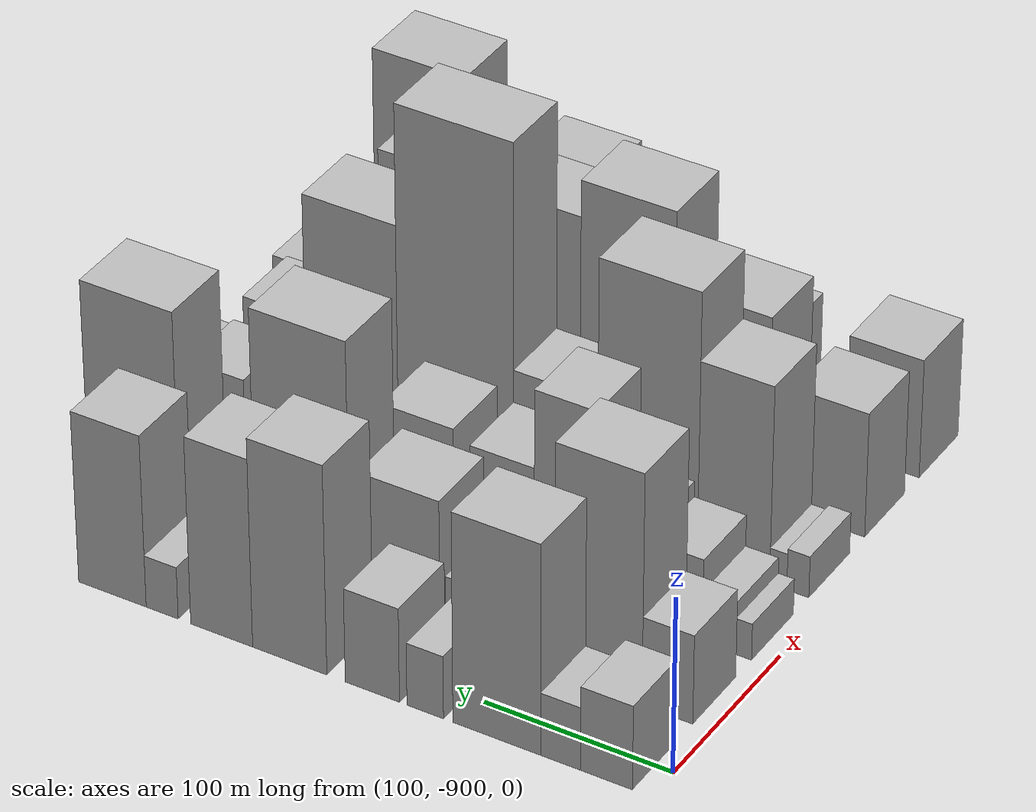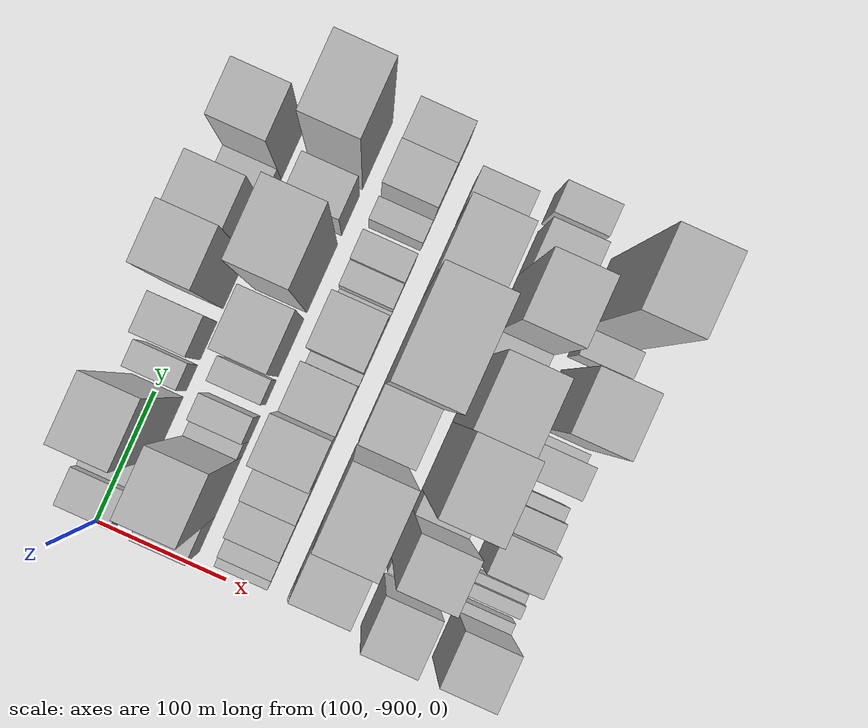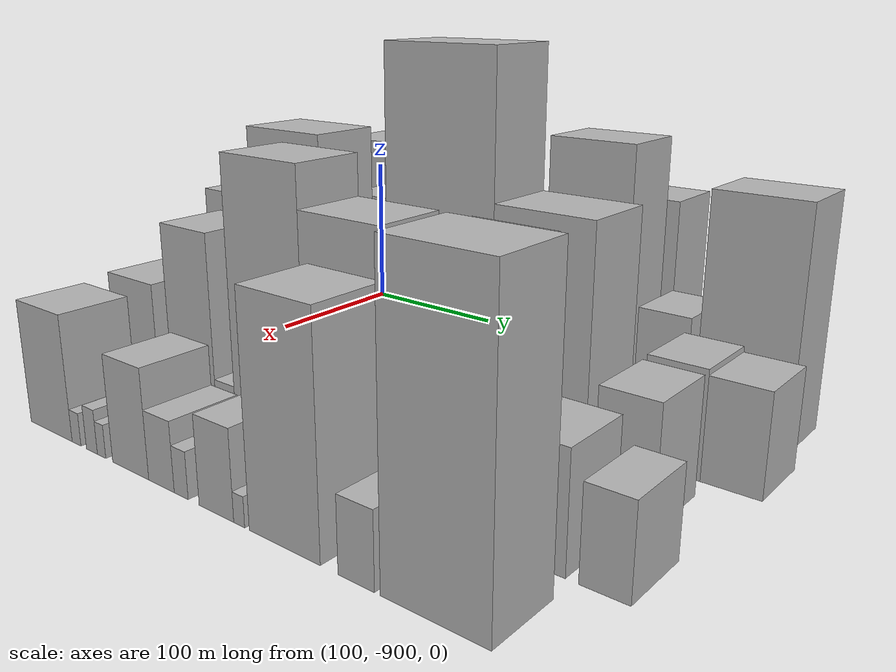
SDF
<sdf version="1.6">
 <world name="default">
  <model name="building_1">
   <static>1</static>
   <pose>100.0000 -876.3728 0 0.000000 0.000000 0.000000</pose>
   <link name="link">
    <pose>0 0 24.00 0 0 0</pose>
    <collision name="collision"><geometry><box><size>40.0000 27.2544 48.0000</size></box></geometry></collision>
    <visual name="visual">
     <cast_shadows>0</cast_shadows>
     <geometry><box><size>40.0000 27.2544 48.0000</size></box></geometry>
     <material>
      <script>
       <uri>model://HANNAS_wall/materials/scripts</uri>
       <uri>model://HANNAS_wall/materials/textures</uri>
       <name>vrc/HANNAS_wall</name>
      </script>
     </material>
    </visual>
   </link>
  </model>
  <model name="building_2">
   <static>1</static>
   <pose>100.0000 -852.3113 0 0.000000 0.000000 0.000000</pose>
   <link name="link">
    <pose>0 0 18.00 0 0 0</pose>
    <collision name="collision"><geometry><box><size>40.0000 20.8685 36.0000</size></box></geometry></collision>
    <visual name="visual">
     <cast_shadows>0</cast_shadows>
     <geometry><box><size>40.0000 20.8685 36.0000</size></box></geometry>
     <material>
      <script>
       <uri>model://HANNAS_wall/materials/scripts</uri>
       <uri>model://HANNAS_wall/materials/textures</uri>
       <name>vrc/HANNAS_wall</name>
      </script>
     </material>
    </visual>
   </link>
  </model>
  <model name="building_3">
   <static>1</static>
   <pose>100.0000 -818.5557 0 0.000000 0.000000 0.000000</pose>
   <link name="link">
    <pose>0 0 60.00 0 0 0</pose>
    <collision name="collision"><geometry><box><size>40.0000 46.6428 120.0000</size></box></geometry></collision>
    <visual name="visual">
     <cast_shadows>0</cast_shadows>
     <geometry><box><size>40.0000 46.6428 120.0000</size></box></geometry>
     <material>
      <script>
       <uri>model://HANNAS_wall/materials/scripts</uri>
       <uri>model://HANNAS_wall/materials/textures</uri>
       <name>vrc/HANNAS_wall</name>
      </script>
     </material>
    </visual>
   </link>
  </model>
  <model name="building_4">
   <static>1</static>
   <pose>100.0000 -780.4193 0 0.000000 0.000000 0.000000</pose>
   <link name="link">
    <pose>0 0 18.00 0 0 0</pose>
    <collision name="collision"><geometry><box><size>40.0000 19.6299 36.0000</size></box></geometry></collision>
    <visual name="visual">
     <cast_shadows>0</cast_shadows>
     <geometry><box><size>40.0000 19.6299 36.0000</size></box></geometry>
     <material>
      <script>
       <uri>model://HANNAS_wall/materials/scripts</uri>
       <uri>model://HANNAS_wall/materials/textures</uri>
       <name>vrc/HANNAS_wall</name>
      </script>
     </material>
    </visual>
   </link>
  </model>
  <model name="building_5">
   <static>1</static>
   <pose>100.0000 -751.9083 0 0.000000 0.000000 0.000000</pose>
   <link name="link">
    <pose>0 0 27.00 0 0 0</pose>
    <collision name="collision"><geometry><box><size>40.0000 29.3921 54.0000</size></box></geometry></collision>
    <visual name="visual">
     <cast_shadows>0</cast_shadows>
     <geometry><box><size>40.0000 29.3921 54.0000</size></box></geometry>
     <material>
      <script>
       <uri>model://HANNAS_wall/materials/scripts</uri>
       <uri>model://HANNAS_wall/materials/textures</uri>
       <name>vrc/HANNAS_wall</name>
      </script>
     </material>
    </visual>
   </link>
  </model>
  <model name="building_6">
   <static>1</static>
   <pose>100.0000 -706.8706 0 0.000000 0.000000 0.000000</pose>
   <link name="link">
    <pose>0 0 60.00 0 0 0</pose>
    <collision name="collision"><geometry><box><size>40.0000 40.6833 120.0000</size></box></geometry></collision>
    <visual name="visual">
     <cast_shadows>0</cast_shadows>
     <geometry><box><size>40.0000 40.6833 120.0000</size></box></geometry>
     <material>
      <script>
       <uri>model://HANNAS_wall/materials/scripts</uri>
       <uri>model://HANNAS_wall/materials/textures</uri>
       <name>vrc/HANNAS_wall</name>
      </script>
     </material>
    </visual>
   </link>
  </model>
  <model name="building_7">
   <static>1</static>
   <pose>100.0000 -669.3736 0 0.000000 0.000000 0.000000</pose>
   <link name="link">
    <pose>0 0 54.00 0 0 0</pose>
    <collision name="collision"><geometry><box><size>40.0000 34.3107 108.0000</size></box></geometry></collision>
    <visual name="visual">
     <cast_shadows>0</cast_shadows>
     <geometry><box><size>40.0000 34.3107 108.0000</size></box></geometry>
     <material>
      <script>
       <uri>model://HANNAS_wall/materials/scripts</uri>
       <uri>model://HANNAS_wall/materials/textures</uri>
       <name>vrc/HANNAS_wall</name>
      </script>
     </material>
    </visual>
   </link>
  </model>
  <model name="building_8">
   <static>1</static>
   <pose>100.0000 -636.2702 0 0.000000 0.000000 0.000000</pose>
   <link name="link">
    <pose>0 0 15.00 0 0 0</pose>
    <collision name="collision"><geometry><box><size>40.0000 17.8961 30.0000</size></box></geometry></collision>
    <visual name="visual">
     <cast_shadows>0</cast_shadows>
     <geometry><box><size>40.0000 17.8961 30.0000</size></box></geometry>
     <material>
      <script>
       <uri>model://HANNAS_wall/materials/scripts</uri>
       <uri>model://HANNAS_wall/materials/textures</uri>
       <name>vrc/HANNAS_wall</name>
      </script>
     </material>
    </visual>
   </link>
  </model>
  <model name="building_9">
   <static>1</static>
   <pose>100.0000 -608.3308 0 0.000000 0.000000 0.000000</pose>
   <link name="link">
    <pose>0 0 49.50 0 0 0</pose>
    <collision name="collision"><geometry><box><size>40.0000 37.9828 99.0000</size></box></geometry></collision>
    <visual name="visual">
     <cast_shadows>0</cast_shadows>
     <geometry><box><size>40.0000 37.9828 99.0000</size></box></geometry>
     <material>
      <script>
       <uri>model://HANNAS_wall/materials/scripts</uri>
       <uri>model://HANNAS_wall/materials/textures</uri>
       <name>vrc/HANNAS_wall</name>
      </script>
     </material>
    </visual>
   </link>
  </model>
  <model name="building_49">
   <static>1</static>
   <pose>155.0000 -876.6113 0 0.000000 0.000000 0.000000</pose>
   <link name="link">
    <pose>0 0 25.50 0 0 0</pose>
    <collision name="collision"><geometry><box><size>40.0000 26.7774 51.0000</size></box></geometry></collision>
    <visual name="visual">
     <cast_shadows>0</cast_shadows>
     <geometry><box><size>40.0000 26.7774 51.0000</size></box></geometry>
     <material>
      <script>
       <uri>model://HANNAS_wall/materials/scripts</uri>
       <uri>model://HANNAS_wall/materials/textures</uri>
       <name>vrc/HANNAS_wall</name>
      </script>
     </material>
    </visual>
   </link>
  </model>
  <model name="building_50">
   <static>1</static>
   <pose>155.0000 -840.0376 0 0.000000 0.000000 0.000000</pose>
   <link name="link">
    <pose>0 0 66.00 0 0 0</pose>
    <collision name="collision"><geometry><box><size>40.0000 46.3701 132.0000</size></box></geometry></collision>
    <visual name="visual">
     <cast_shadows>0</cast_shadows>
     <geometry><box><size>40.0000 46.3701 132.0000</size></box></geometry>
     <material>
      <script>
       <uri>model://HANNAS_wall/materials/scripts</uri>
       <uri>model://HANNAS_wall/materials/textures</uri>
       <name>vrc/HANNAS_wall</name>
      </script>
     </material>
    </visual>
   </link>
  </model>
  <model name="building_51">
   <static>1</static>
   <pose>155.0000 -810.8383 0 0.000000 0.000000 0.000000</pose>
   <link name="link">
    <pose>0 0 13.50 0 0 0</pose>
    <collision name="collision"><geometry><box><size>40.0000 12.0285 27.0000</size></box></geometry></collision>
    <visual name="visual">
     <cast_shadows>0</cast_shadows>
     <geometry><box><size>40.0000 12.0285 27.0000</size></box></geometry>
     <material>
      <script>
       <uri>model://HANNAS_wall/materials/scripts</uri>
       <uri>model://HANNAS_wall/materials/textures</uri>
       <name>vrc/HANNAS_wall</name>
      </script>
     </material>
    </visual>
   </link>
  </model>
  <model name="building_52">
   <static>1</static>
   <pose>155.0000 -795.0150 0 0.000000 0.000000 0.000000</pose>
   <link name="link">
    <pose>0 0 19.50 0 0 0</pose>
    <collision name="collision"><geometry><box><size>40.0000 19.6181 39.0000</size></box></geometry></collision>
    <visual name="visual">
     <cast_shadows>0</cast_shadows>
     <geometry><box><size>40.0000 19.6181 39.0000</size></box></geometry>
     <material>
      <script>
       <uri>model://HANNAS_wall/materials/scripts</uri>
       <uri>model://HANNAS_wall/materials/textures</uri>
       <name>vrc/HANNAS_wall</name>
      </script>
     </material>
    </visual>
   </link>
  </model>
  <model name="building_53">
   <static>1</static>
   <pose>155.0000 -766.9659 0 0.000000 0.000000 0.000000</pose>
   <link name="link">
    <pose>0 0 16.50 0 0 0</pose>
    <collision name="collision"><geometry><box><size>40.0000 18.4801 33.0000</size></box></geometry></collision>
    <visual name="visual">
     <cast_shadows>0</cast_shadows>
     <geometry><box><size>40.0000 18.4801 33.0000</size></box></geometry>
     <material>
      <script>
       <uri>model://HANNAS_wall/materials/scripts</uri>
       <uri>model://HANNAS_wall/materials/textures</uri>
       <name>vrc/HANNAS_wall</name>
      </script>
     </material>
    </visual>
   </link>
  </model>
  <model name="building_54">
   <static>1</static>
   <pose>155.0000 -732.5812 0 0.000000 0.000000 0.000000</pose>
   <link name="link">
    <pose>0 0 37.50 0 0 0</pose>
    <collision name="collision"><geometry><box><size>40.0000 44.2895 75.0000</size></box></geometry></collision>
    <visual name="visual">
     <cast_shadows>0</cast_shadows>
     <geometry><box><size>40.0000 44.2895 75.0000</size></box></geometry>
     <material>
      <script>
       <uri>model://HANNAS_wall/materials/scripts</uri>
       <uri>model://HANNAS_wall/materials/textures</uri>
       <name>vrc/HANNAS_wall</name>
      </script>
     </material>
    </visual>
   </link>
  </model>
  <model name="building_55">
   <static>1</static>
   <pose>155.0000 -679.1869 0 0.000000 0.000000 0.000000</pose>
   <link name="link">
    <pose>0 0 73.50 0 0 0</pose>
    <collision name="collision"><geometry><box><size>40.0000 52.4989 147.0000</size></box></geometry></collision>
    <visual name="visual">
     <cast_shadows>0</cast_shadows>
     <geometry><box><size>40.0000 52.4989 147.0000</size></box></geometry>
     <material>
      <script>
       <uri>model://HANNAS_wall/materials/scripts</uri>
       <uri>model://HANNAS_wall/materials/textures</uri>
       <name>vrc/HANNAS_wall</name>
      </script>
     </material>
    </visual>
   </link>
  </model>
  <model name="building_56">
   <static>1</static>
   <pose>155.0000 -630.6024 0 0.000000 0.000000 0.000000</pose>
   <link name="link">
    <pose>0 0 30.00 0 0 0</pose>
    <collision name="collision"><geometry><box><size>40.0000 30.6701 60.0000</size></box></geometry></collision>
    <visual name="visual">
     <cast_shadows>0</cast_shadows>
     <geometry><box><size>40.0000 30.6701 60.0000</size></box></geometry>
     <material>
      <script>
       <uri>model://HANNAS_wall/materials/scripts</uri>
       <uri>model://HANNAS_wall/materials/textures</uri>
       <name>vrc/HANNAS_wall</name>
      </script>
     </material>
    </visual>
   </link>
  </model>
  <model name="building_57">
   <static>1</static>
   <pose>155.0000 -584.4768 0 0.000000 0.000000 0.000000</pose>
   <link name="link">
    <pose>0 0 64.50 0 0 0</pose>
    <collision name="collision"><geometry><box><size>40.0000 51.5812 129.0000</size></box></geometry></collision>
    <visual name="visual">
     <cast_shadows>0</cast_shadows>
     <geometry><box><size>40.0000 51.5812 129.0000</size></box></geometry>
     <material>
      <script>
       <uri>model://HANNAS_wall/materials/scripts</uri>
       <uri>model://HANNAS_wall/materials/textures</uri>
       <name>vrc/HANNAS_wall</name>
      </script>
     </material>
    </visual>
   </link>
  </model>
  <model name="building_98">
   <static>1</static>
   <pose>210.0000 -885.7321 0 0.000000 0.000000 0.000000</pose>
   <link name="link">
    <pose>0 0 10.50 0 0 0</pose>
    <collision name="collision"><geometry><box><size>40.0000 8.5358 21.0000</size></box></geometry></collision>
    <visual name="visual">
     <cast_shadows>0</cast_shadows>
     <geometry><box><size>40.0000 8.5358 21.0000</size></box></geometry>
     <material>
      <script>
       <uri>model://HANNAS_wall/materials/scripts</uri>
       <uri>model://HANNAS_wall/materials/textures</uri>
       <name>vrc/HANNAS_wall</name>
      </script>
     </material>
    </visual>
   </link>
  </model>
  <model name="building_99">
   <static>1</static>
   <pose>210.0000 -872.6672 0 0.000000 0.000000 0.000000</pose>
   <link name="link">
    <pose>0 0 15.00 0 0 0</pose>
    <collision name="collision"><geometry><box><size>40.0000 17.5940 30.0000</size></box></geometry></collision>
    <visual name="visual">
     <cast_shadows>0</cast_shadows>
     <geometry><box><size>40.0000 17.5940 30.0000</size></box></geometry>
     <material>
      <script>
       <uri>model://HANNAS_wall/materials/scripts</uri>
       <uri>model://HANNAS_wall/materials/textures</uri>
       <name>vrc/HANNAS_wall</name>
      </script>
     </material>
    </visual>
   </link>
  </model>
  <model name="building_100">
   <static>1</static>
   <pose>210.0000 -850.0177 0 0.000000 0.000000 0.000000</pose>
   <link name="link">
    <pose>0 0 24.00 0 0 0</pose>
    <collision name="collision"><geometry><box><size>40.0000 27.7050 48.0000</size></box></geometry></collision>
    <visual name="visual">
     <cast_shadows>0</cast_shadows>
     <geometry><box><size>40.0000 27.7050 48.0000</size></box></geometry>
     <material>
      <script>
       <uri>model://HANNAS_wall/materials/scripts</uri>
       <uri>model://HANNAS_wall/materials/textures</uri>
       <name>vrc/HANNAS_wall</name>
      </script>
     </material>
    </visual>
   </link>
  </model>
  <model name="building_101">
   <static>1</static>
   <pose>210.0000 -821.4120 0 0.000000 0.000000 0.000000</pose>
   <link name="link">
    <pose>0 0 28.50 0 0 0</pose>
    <collision name="collision"><geometry><box><size>40.0000 29.5065 57.0000</size></box></geometry></collision>
    <visual name="visual">
     <cast_shadows>0</cast_shadows>
     <geometry><box><size>40.0000 29.5065 57.0000</size></box></geometry>
     <material>
      <script>
       <uri>model://HANNAS_wall/materials/scripts</uri>
       <uri>model://HANNAS_wall/materials/textures</uri>
       <name>vrc/HANNAS_wall</name>
      </script>
     </material>
    </visual>
   </link>
  </model>
  <model name="building_102">
   <static>1</static>
   <pose>210.0000 -789.8517 0 0.000000 0.000000 0.000000</pose>
   <link name="link">
    <pose>0 0 55.50 0 0 0</pose>
    <collision name="collision"><geometry><box><size>40.0000 33.6141 111.0000</size></box></geometry></collision>
    <visual name="visual">
     <cast_shadows>0</cast_shadows>
     <geometry><box><size>40.0000 33.6141 111.0000</size></box></geometry>
     <material>
      <script>
       <uri>model://HANNAS_wall/materials/scripts</uri>
       <uri>model://HANNAS_wall/materials/textures</uri>
       <name>vrc/HANNAS_wall</name>
      </script>
     </material>
    </visual>
   </link>
  </model>
  <model name="building_103">
   <static>1</static>
   <pose>210.0000 -755.4832 0 0.000000 0.000000 0.000000</pose>
   <link name="link">
    <pose>0 0 33.00 0 0 0</pose>
    <collision name="collision"><geometry><box><size>40.0000 35.1228 66.0000</size></box></geometry></collision>
    <visual name="visual">
     <cast_shadows>0</cast_shadows>
     <geometry><box><size>40.0000 35.1228 66.0000</size></box></geometry>
     <material>
      <script>
       <uri>model://HANNAS_wall/materials/scripts</uri>
       <uri>model://HANNAS_wall/materials/textures</uri>
       <name>vrc/HANNAS_wall</name>
      </script>
     </material>
    </visual>
   </link>
  </model>
  <model name="building_104">
   <static>1</static>
   <pose>210.0000 -733.4380 0 0.000000 0.000000 0.000000</pose>
   <link name="link">
    <pose>0 0 10.50 0 0 0</pose>
    <collision name="collision"><geometry><box><size>40.0000 8.9677 21.0000</size></box></geometry></collision>
    <visual name="visual">
     <cast_shadows>0</cast_shadows>
     <geometry><box><size>40.0000 8.9677 21.0000</size></box></geometry>
     <material>
      <script>
       <uri>model://HANNAS_wall/materials/scripts</uri>
       <uri>model://HANNAS_wall/materials/textures</uri>
       <name>vrc/HANNAS_wall</name>
      </script>
     </material>
    </visual>
   </link>
  </model>
  <model name="building_105">
   <static>1</static>
   <pose>210.0000 -709.0007 0 0.000000 0.000000 0.000000</pose>
   <link name="link">
    <pose>0 0 36.00 0 0 0</pose>
    <collision name="collision"><geometry><box><size>40.0000 39.9068 72.0000</size></box></geometry></collision>
    <visual name="visual">
     <cast_shadows>0</cast_shadows>
     <geometry><box><size>40.0000 39.9068 72.0000</size></box></geometry>
     <material>
      <script>
       <uri>model://HANNAS_wall/materials/scripts</uri>
       <uri>model://HANNAS_wall/materials/textures</uri>
       <name>vrc/HANNAS_wall</name>
      </script>
     </material>
    </visual>
   </link>
  </model>
  <model name="building_106">
   <static>1</static>
   <pose>210.0000 -685.3286 0 0.000000 0.000000 0.000000</pose>
   <link name="link">
    <pose>0 0 7.50 0 0 0</pose>
    <collision name="collision"><geometry><box><size>40.0000 7.4375 15.0000</size></box></geometry></collision>
    <visual name="visual">
     <cast_shadows>0</cast_shadows>
     <geometry><box><size>40.0000 7.4375 15.0000</size></box></geometry>
     <material>
      <script>
       <uri>model://HANNAS_wall/materials/scripts</uri>
       <uri>model://HANNAS_wall/materials/textures</uri>
       <name>vrc/HANNAS_wall</name>
      </script>
     </material>
    </visual>
   </link>
  </model>
  <model name="building_107">
   <static>1</static>
   <pose>210.0000 -672.3068 0 0.000000 0.000000 0.000000</pose>
   <link name="link">
    <pose>0 0 18.00 0 0 0</pose>
    <collision name="collision"><geometry><box><size>40.0000 18.6061 36.0000</size></box></geometry></collision>
    <visual name="visual">
     <cast_shadows>0</cast_shadows>
     <geometry><box><size>40.0000 18.6061 36.0000</size></box></geometry>
     <material>
      <script>
       <uri>model://HANNAS_wall/materials/scripts</uri>
       <uri>model://HANNAS_wall/materials/textures</uri>
       <name>vrc/HANNAS_wall</name>
      </script>
     </material>
    </visual>
   </link>
  </model>
  <model name="building_108">
   <static>1</static>
   <pose>210.0000 -652.4063 0 0.000000 0.000000 0.000000</pose>
   <link name="link">
    <pose>0 0 21.00 0 0 0</pose>
    <collision name="collision"><geometry><box><size>40.0000 21.1949 42.0000</size></box></geometry></collision>
    <visual name="visual">
     <cast_shadows>0</cast_shadows>
     <geometry><box><size>40.0000 21.1949 42.0000</size></box></geometry>
     <material>
      <script>
       <uri>model://HANNAS_wall/materials/scripts</uri>
       <uri>model://HANNAS_wall/materials/textures</uri>
       <name>vrc/HANNAS_wall</name>
      </script>
     </material>
    </visual>
   </link>
  </model>
  <model name="building_109">
   <static>1</static>
   <pose>210.0000 -624.3836 0 0.000000 0.000000 0.000000</pose>
   <link name="link">
    <pose>0 0 16.50 0 0 0</pose>
    <collision name="collision"><geometry><box><size>40.0000 16.8505 33.0000</size></box></geometry></collision>
    <visual name="visual">
     <cast_shadows>0</cast_shadows>
     <geometry><box><size>40.0000 16.8505 33.0000</size></box></geometry>
     <material>
      <script>
       <uri>model://HANNAS_wall/materials/scripts</uri>
       <uri>model://HANNAS_wall/materials/textures</uri>
       <name>vrc/HANNAS_wall</name>
      </script>
     </material>
    </visual>
   </link>
  </model>
  <model name="building_110">
   <static>1</static>
   <pose>210.0000 -596.2396 0 0.000000 0.000000 0.000000</pose>
   <link name="link">
    <pose>0 0 28.50 0 0 0</pose>
    <collision name="collision"><geometry><box><size>40.0000 31.4375 57.0000</size></box></geometry></collision>
    <visual name="visual">
     <cast_shadows>0</cast_shadows>
     <geometry><box><size>40.0000 31.4375 57.0000</size></box></geometry>
     <material>
      <script>
       <uri>model://HANNAS_wall/materials/scripts</uri>
       <uri>model://HANNAS_wall/materials/textures</uri>
       <name>vrc/HANNAS_wall</name>
      </script>
     </material>
    </visual>
   </link>
  </model>
  <model name="building_111">
   <static>1</static>
   <pose>210.0000 -565.2725 0 0.000000 0.000000 0.000000</pose>
   <link name="link">
    <pose>0 0 27.00 0 0 0</pose>
    <collision name="collision"><geometry><box><size>40.0000 30.4966 54.0000</size></box></geometry></collision>
    <visual name="visual">
     <cast_shadows>0</cast_shadows>
     <geometry><box><size>40.0000 30.4966 54.0000</size></box></geometry>
     <material>
      <script>
       <uri>model://HANNAS_wall/materials/scripts</uri>
       <uri>model://HANNAS_wall/materials/textures</uri>
       <name>vrc/HANNAS_wall</name>
      </script>
     </material>
    </visual>
   </link>
  </model>
  <model name="building_154">
   <static>1</static>
   <pose>265.0000 -884.1176 0 0.000000 0.000000 0.000000</pose>
   <link name="link">
    <pose>0 0 12.00 0 0 0</pose>
    <collision name="collision"><geometry><box><size>40.0000 11.7647 24.0000</size></box></geometry></collision>
    <visual name="visual">
     <cast_shadows>0</cast_shadows>
     <geometry><box><size>40.0000 11.7647 24.0000</size></box></geometry>
     <material>
      <script>
       <uri>model://HANNAS_wall/materials/scripts</uri>
       <uri>model://HANNAS_wall/materials/textures</uri>
       <name>vrc/HANNAS_wall</name>
      </script>
     </material>
    </visual>
   </link>
  </model>
  <model name="building_155">
   <static>1</static>
   <pose>265.0000 -873.5935 0 0.000000 0.000000 0.000000</pose>
   <link name="link">
    <pose>0 0 10.50 0 0 0</pose>
    <collision name="collision"><geometry><box><size>40.0000 9.2837 21.0000</size></box></geometry></collision>
    <visual name="visual">
     <cast_shadows>0</cast_shadows>
     <geometry><box><size>40.0000 9.2837 21.0000</size></box></geometry>
     <material>
      <script>
       <uri>model://HANNAS_wall/materials/scripts</uri>
       <uri>model://HANNAS_wall/materials/textures</uri>
       <name>vrc/HANNAS_wall</name>
      </script>
     </material>
    </visual>
   </link>
  </model>
  <model name="building_156">
   <static>1</static>
   <pose>265.0000 -849.3984 0 0.000000 0.000000 0.000000</pose>
   <link name="link">
    <pose>0 0 57.00 0 0 0</pose>
    <collision name="collision"><geometry><box><size>40.0000 39.1064 114.0000</size></box></geometry></collision>
    <visual name="visual">
     <cast_shadows>0</cast_shadows>
     <geometry><box><size>40.0000 39.1064 114.0000</size></box></geometry>
     <material>
      <script>
       <uri>model://HANNAS_wall/materials/scripts</uri>
       <uri>model://HANNAS_wall/materials/textures</uri>
       <name>vrc/HANNAS_wall</name>
      </script>
     </material>
    </visual>
   </link>
  </model>
  <model name="building_157">
   <static>1</static>
   <pose>265.0000 -802.4860 0 0.000000 0.000000 0.000000</pose>
   <link name="link">
    <pose>0 0 76.50 0 0 0</pose>
    <collision name="collision"><geometry><box><size>40.0000 54.7183 153.0000</size></box></geometry></collision>
    <visual name="visual">
     <cast_shadows>0</cast_shadows>
     <geometry><box><size>40.0000 54.7183 153.0000</size></box></geometry>
     <material>
      <script>
       <uri>model://HANNAS_wall/materials/scripts</uri>
       <uri>model://HANNAS_wall/materials/textures</uri>
       <name>vrc/HANNAS_wall</name>
      </script>
     </material>
    </visual>
   </link>
  </model>
  <model name="building_158">
   <static>1</static>
   <pose>265.0000 -750.0093 0 0.000000 0.000000 0.000000</pose>
   <link name="link">
    <pose>0 0 36.00 0 0 0</pose>
    <collision name="collision"><geometry><box><size>40.0000 42.2350 72.0000</size></box></geometry></collision>
    <visual name="visual">
     <cast_shadows>0</cast_shadows>
     <geometry><box><size>40.0000 42.2350 72.0000</size></box></geometry>
     <material>
      <script>
       <uri>model://HANNAS_wall/materials/scripts</uri>
       <uri>model://HANNAS_wall/materials/textures</uri>
       <name>vrc/HANNAS_wall</name>
      </script>
     </material>
    </visual>
   </link>
  </model>
  <model name="building_159">
   <static>1</static>
   <pose>265.0000 -696.4402 0 0.000000 0.000000 0.000000</pose>
   <link name="link">
    <pose>0 0 100.50 0 0 0</pose>
    <collision name="collision"><geometry><box><size>40.0000 64.9032 201.0000</size></box></geometry></collision>
    <visual name="visual">
     <cast_shadows>0</cast_shadows>
     <geometry><box><size>40.0000 64.9032 201.0000</size></box></geometry>
     <material>
      <script>
       <uri>model://HANNAS_wall/materials/scripts</uri>
       <uri>model://HANNAS_wall/materials/textures</uri>
       <name>vrc/HANNAS_wall</name>
      </script>
     </material>
    </visual>
   </link>
  </model>
  <model name="building_160">
   <static>1</static>
   <pose>265.0000 -637.8493 0 0.000000 0.000000 0.000000</pose>
   <link name="link">
    <pose>0 0 66.00 0 0 0</pose>
    <collision name="collision"><geometry><box><size>40.0000 52.2787 132.0000</size></box></geometry></collision>
    <visual name="visual">
     <cast_shadows>0</cast_shadows>
     <geometry><box><size>40.0000 52.2787 132.0000</size></box></geometry>
     <material>
      <script>
       <uri>model://HANNAS_wall/materials/scripts</uri>
       <uri>model://HANNAS_wall/materials/textures</uri>
       <name>vrc/HANNAS_wall</name>
      </script>
     </material>
    </visual>
   </link>
  </model>
  <model name="building_161">
   <static>1</static>
   <pose>265.0000 -591.4297 0 0.000000 0.000000 0.000000</pose>
   <link name="link">
    <pose>0 0 30.00 0 0 0</pose>
    <collision name="collision"><geometry><box><size>40.0000 30.5606 60.0000</size></box></geometry></collision>
    <visual name="visual">
     <cast_shadows>0</cast_shadows>
     <geometry><box><size>40.0000 30.5606 60.0000</size></box></geometry>
     <material>
      <script>
       <uri>model://HANNAS_wall/materials/scripts</uri>
       <uri>model://HANNAS_wall/materials/textures</uri>
       <name>vrc/HANNAS_wall</name>
      </script>
     </material>
    </visual>
   </link>
  </model>
  <model name="building_209">
   <static>1</static>
   <pose>320.0000 -869.9074 0 0.000000 0.000000 0.000000</pose>
   <link name="link">
    <pose>0 0 36.00 0 0 0</pose>
    <collision name="collision"><geometry><box><size>40.0000 40.1853 72.0000</size></box></geometry></collision>
    <visual name="visual">
     <cast_shadows>0</cast_shadows>
     <geometry><box><size>40.0000 40.1853 72.0000</size></box></geometry>
     <material>
      <script>
       <uri>model://HANNAS_wall/materials/scripts</uri>
       <uri>model://HANNAS_wall/materials/textures</uri>
       <name>vrc/HANNAS_wall</name>
      </script>
     </material>
    </visual>
   </link>
  </model>
  <model name="building_210">
   <static>1</static>
   <pose>320.0000 -841.5827 0 0.000000 0.000000 0.000000</pose>
   <link name="link">
    <pose>0 0 9.00 0 0 0</pose>
    <collision name="collision"><geometry><box><size>40.0000 8.4641 18.0000</size></box></geometry></collision>
    <visual name="visual">
     <cast_shadows>0</cast_shadows>
     <geometry><box><size>40.0000 8.4641 18.0000</size></box></geometry>
     <material>
      <script>
       <uri>model://HANNAS_wall/materials/scripts</uri>
       <uri>model://HANNAS_wall/materials/textures</uri>
       <name>vrc/HANNAS_wall</name>
      </script>
     </material>
    </visual>
   </link>
  </model>
  <model name="building_211">
   <static>1</static>
   <pose>320.0000 -819.0406 0 0.000000 0.000000 0.000000</pose>
   <link name="link">
    <pose>0 0 54.00 0 0 0</pose>
    <collision name="collision"><geometry><box><size>40.0000 36.6201 108.0000</size></box></geometry></collision>
    <visual name="visual">
     <cast_shadows>0</cast_shadows>
     <geometry><box><size>40.0000 36.6201 108.0000</size></box></geometry>
     <material>
      <script>
       <uri>model://HANNAS_wall/materials/scripts</uri>
       <uri>model://HANNAS_wall/materials/textures</uri>
       <name>vrc/HANNAS_wall</name>
      </script>
     </material>
    </visual>
   </link>
  </model>
  <model name="building_212">
   <static>1</static>
   <pose>320.0000 -793.0028 0 0.000000 0.000000 0.000000</pose>
   <link name="link">
    <pose>0 0 15.00 0 0 0</pose>
    <collision name="collision"><geometry><box><size>40.0000 15.4555 30.0000</size></box></geometry></collision>
    <visual name="visual">
     <cast_shadows>0</cast_shadows>
     <geometry><box><size>40.0000 15.4555 30.0000</size></box></geometry>
     <material>
      <script>
       <uri>model://HANNAS_wall/materials/scripts</uri>
       <uri>model://HANNAS_wall/materials/textures</uri>
       <name>vrc/HANNAS_wall</name>
      </script>
     </material>
    </visual>
   </link>
  </model>
  <model name="building_213">
   <static>1</static>
   <pose>320.0000 -759.2458 0 0.000000 0.000000 0.000000</pose>
   <link name="link">
    <pose>0 0 75.00 0 0 0</pose>
    <collision name="collision"><geometry><box><size>40.0000 52.0584 150.0000</size></box></geometry></collision>
    <visual name="visual">
     <cast_shadows>0</cast_shadows>
     <geometry><box><size>40.0000 52.0584 150.0000</size></box></geometry>
     <material>
      <script>
       <uri>model://HANNAS_wall/materials/scripts</uri>
       <uri>model://HANNAS_wall/materials/textures</uri>
       <name>vrc/HANNAS_wall</name>
      </script>
     </material>
    </visual>
   </link>
  </model>
  <model name="building_214">
   <static>1</static>
   <pose>320.0000 -708.3393 0 0.000000 0.000000 0.000000</pose>
   <link name="link">
    <pose>0 0 64.50 0 0 0</pose>
    <collision name="collision"><geometry><box><size>40.0000 49.7547 129.0000</size></box></geometry></collision>
    <visual name="visual">
     <cast_shadows>0</cast_shadows>
     <geometry><box><size>40.0000 49.7547 129.0000</size></box></geometry>
     <material>
      <script>
       <uri>model://HANNAS_wall/materials/scripts</uri>
       <uri>model://HANNAS_wall/materials/textures</uri>
       <name>vrc/HANNAS_wall</name>
      </script>
     </material>
    </visual>
   </link>
  </model>
  <model name="building_215">
   <static>1</static>
   <pose>320.0000 -674.2924 0 0.000000 0.000000 0.000000</pose>
   <link name="link">
    <pose>0 0 18.00 0 0 0</pose>
    <collision name="collision"><geometry><box><size>40.0000 18.3391 36.0000</size></box></geometry></collision>
    <visual name="visual">
     <cast_shadows>0</cast_shadows>
     <geometry><box><size>40.0000 18.3391 36.0000</size></box></geometry>
     <material>
      <script>
       <uri>model://HANNAS_wall/materials/scripts</uri>
       <uri>model://HANNAS_wall/materials/textures</uri>
       <name>vrc/HANNAS_wall</name>
      </script>
     </material>
    </visual>
   </link>
  </model>
  <model name="building_216">
   <static>1</static>
   <pose>320.0000 -642.4838 0 0.000000 0.000000 0.000000</pose>
   <link name="link">
    <pose>0 0 64.50 0 0 0</pose>
    <collision name="collision"><geometry><box><size>40.0000 45.2781 129.0000</size></box></geometry></collision>
    <visual name="visual">
     <cast_shadows>0</cast_shadows>
     <geometry><box><size>40.0000 45.2781 129.0000</size></box></geometry>
     <material>
      <script>
       <uri>model://HANNAS_wall/materials/scripts</uri>
       <uri>model://HANNAS_wall/materials/textures</uri>
       <name>vrc/HANNAS_wall</name>
      </script>
     </material>
    </visual>
   </link>
  </model>
  <model name="building_217">
   <static>1</static>
   <pose>320.0000 -603.2186 0 0.000000 0.000000 0.000000</pose>
   <link name="link">
    <pose>0 0 28.50 0 0 0</pose>
    <collision name="collision"><geometry><box><size>40.0000 33.2523 57.0000</size></box></geometry></collision>
    <visual name="visual">
     <cast_shadows>0</cast_shadows>
     <geometry><box><size>40.0000 33.2523 57.0000</size></box></geometry>
     <material>
      <script>
       <uri>model://HANNAS_wall/materials/scripts</uri>
       <uri>model://HANNAS_wall/materials/textures</uri>
       <name>vrc/HANNAS_wall</name>
      </script>
     </material>
    </visual>
   </link>
  </model>
  <model name="building_218">
   <static>1</static>
   <pose>320.0000 -569.0226 0 0.000000 0.000000 0.000000</pose>
   <link name="link">
    <pose>0 0 22.50 0 0 0</pose>
    <collision name="collision"><geometry><box><size>40.0000 23.1397 45.0000</size></box></geometry></collision>
    <visual name="visual">
     <cast_shadows>0</cast_shadows>
     <geometry><box><size>40.0000 23.1397 45.0000</size></box></geometry>
     <material>
      <script>
       <uri>model://HANNAS_wall/materials/scripts</uri>
       <uri>model://HANNAS_wall/materials/textures</uri>
       <name>vrc/HANNAS_wall</name>
      </script>
     </material>
    </visual>
   </link>
  </model>
  <model name="building_259">
   <static>1</static>
   <pose>375.0000 -870.0220 0 0.000000 0.000000 0.000000</pose>
   <link name="link">
    <pose>0 0 34.50 0 0 0</pose>
    <collision name="collision"><geometry><box><size>40.0000 39.9561 69.0000</size></box></geometry></collision>
    <visual name="visual">
     <cast_shadows>0</cast_shadows>
     <geometry><box><size>40.0000 39.9561 69.0000</size></box></geometry>
     <material>
      <script>
       <uri>model://HANNAS_wall/materials/scripts</uri>
       <uri>model://HANNAS_wall/materials/textures</uri>
       <name>vrc/HANNAS_wall</name>
      </script>
     </material>
    </visual>
   </link>
  </model>
  <model name="building_260">
   <static>1</static>
   <pose>375.0000 -845.9788 0 0.000000 0.000000 0.000000</pose>
   <link name="link">
    <pose>0 0 9.00 0 0 0</pose>
    <collision name="collision"><geometry><box><size>40.0000 8.1302 18.0000</size></box></geometry></collision>
    <visual name="visual">
     <cast_shadows>0</cast_shadows>
     <geometry><box><size>40.0000 8.1302 18.0000</size></box></geometry>
     <material>
      <script>
       <uri>model://HANNAS_wall/materials/scripts</uri>
       <uri>model://HANNAS_wall/materials/textures</uri>
       <name>vrc/HANNAS_wall</name>
      </script>
     </material>
    </visual>
   </link>
  </model>
  <model name="building_261">
   <static>1</static>
   <pose>375.0000 -832.0209 0 0.000000 0.000000 0.000000</pose>
   <link name="link">
    <pose>0 0 12.00 0 0 0</pose>
    <collision name="collision"><geometry><box><size>40.0000 9.7856 24.0000</size></box></geometry></collision>
    <visual name="visual">
     <cast_shadows>0</cast_shadows>
     <geometry><box><size>40.0000 9.7856 24.0000</size></box></geometry>
     <material>
      <script>
       <uri>model://HANNAS_wall/materials/scripts</uri>
       <uri>model://HANNAS_wall/materials/textures</uri>
       <name>vrc/HANNAS_wall</name>
      </script>
     </material>
    </visual>
   </link>
  </model>
  <model name="building_262">
   <static>1</static>
   <pose>375.0000 -823.4637 0 0.000000 0.000000 0.000000</pose>
   <link name="link">
    <pose>0 0 9.00 0 0 0</pose>
    <collision name="collision"><geometry><box><size>40.0000 7.3287 18.0000</size></box></geometry></collision>
    <visual name="visual">
     <cast_shadows>0</cast_shadows>
     <geometry><box><size>40.0000 7.3287 18.0000</size></box></geometry>
     <material>
      <script>
       <uri>model://HANNAS_wall/materials/scripts</uri>
       <uri>model://HANNAS_wall/materials/textures</uri>
       <name>vrc/HANNAS_wall</name>
      </script>
     </material>
    </visual>
   </link>
  </model>
  <model name="building_263">
   <static>1</static>
   <pose>375.0000 -798.9651 0 0.000000 0.000000 0.000000</pose>
   <link name="link">
    <pose>0 0 28.50 0 0 0</pose>
    <collision name="collision"><geometry><box><size>40.0000 29.6686 57.0000</size></box></geometry></collision>
    <visual name="visual">
     <cast_shadows>0</cast_shadows>
     <geometry><box><size>40.0000 29.6686 57.0000</size></box></geometry>
     <material>
      <script>
       <uri>model://HANNAS_wall/materials/scripts</uri>
       <uri>model://HANNAS_wall/materials/textures</uri>
       <name>vrc/HANNAS_wall</name>
      </script>
     </material>
    </visual>
   </link>
  </model>
  <model name="building_264">
   <static>1</static>
   <pose>375.0000 -774.2661 0 0.000000 0.000000 0.000000</pose>
   <link name="link">
    <pose>0 0 18.00 0 0 0</pose>
    <collision name="collision"><geometry><box><size>40.0000 19.7293 36.0000</size></box></geometry></collision>
    <visual name="visual">
     <cast_shadows>0</cast_shadows>
     <geometry><box><size>40.0000 19.7293 36.0000</size></box></geometry>
     <material>
      <script>
       <uri>model://HANNAS_wall/materials/scripts</uri>
       <uri>model://HANNAS_wall/materials/textures</uri>
       <name>vrc/HANNAS_wall</name>
      </script>
     </material>
    </visual>
   </link>
  </model>
  <model name="building_265">
   <static>1</static>
   <pose>375.0000 -759.2546 0 0.000000 0.000000 0.000000</pose>
   <link name="link">
    <pose>0 0 12.00 0 0 0</pose>
    <collision name="collision"><geometry><box><size>40.0000 10.2937 24.0000</size></box></geometry></collision>
    <visual name="visual">
     <cast_shadows>0</cast_shadows>
     <geometry><box><size>40.0000 10.2937 24.0000</size></box></geometry>
     <material>
      <script>
       <uri>model://HANNAS_wall/materials/scripts</uri>
       <uri>model://HANNAS_wall/materials/textures</uri>
       <name>vrc/HANNAS_wall</name>
      </script>
     </material>
    </visual>
   </link>
  </model>
  <model name="building_266">
   <static>1</static>
   <pose>375.0000 -734.1075 0 0.000000 0.000000 0.000000</pose>
   <link name="link">
    <pose>0 0 22.50 0 0 0</pose>
    <collision name="collision"><geometry><box><size>40.0000 24.0005 45.0000</size></box></geometry></collision>
    <visual name="visual">
     <cast_shadows>0</cast_shadows>
     <geometry><box><size>40.0000 24.0005 45.0000</size></box></geometry>
     <material>
      <script>
       <uri>model://HANNAS_wall/materials/scripts</uri>
       <uri>model://HANNAS_wall/materials/textures</uri>
       <name>vrc/HANNAS_wall</name>
      </script>
     </material>
    </visual>
   </link>
  </model>
  <model name="building_267">
   <static>1</static>
   <pose>375.0000 -718.4705 0 0.000000 0.000000 0.000000</pose>
   <link name="link">
    <pose>0 0 7.50 0 0 0</pose>
    <collision name="collision"><geometry><box><size>40.0000 7.2735 15.0000</size></box></geometry></collision>
    <visual name="visual">
     <cast_shadows>0</cast_shadows>
     <geometry><box><size>40.0000 7.2735 15.0000</size></box></geometry>
     <material>
      <script>
       <uri>model://HANNAS_wall/materials/scripts</uri>
       <uri>model://HANNAS_wall/materials/textures</uri>
       <name>vrc/HANNAS_wall</name>
      </script>
     </material>
    </visual>
   </link>
  </model>
  <model name="building_268">
   <static>1</static>
   <pose>375.0000 -690.0916 0 0.000000 0.000000 0.000000</pose>
   <link name="link">
    <pose>0 0 55.50 0 0 0</pose>
    <collision name="collision"><geometry><box><size>40.0000 43.4842 111.0000</size></box></geometry></collision>
    <visual name="visual">
     <cast_shadows>0</cast_shadows>
     <geometry><box><size>40.0000 43.4842 111.0000</size></box></geometry>
     <material>
      <script>
       <uri>model://HANNAS_wall/materials/scripts</uri>
       <uri>model://HANNAS_wall/materials/textures</uri>
       <name>vrc/HANNAS_wall</name>
      </script>
     </material>
    </visual>
   </link>
  </model>
  <model name="building_269">
   <static>1</static>
   <pose>375.0000 -648.5104 0 0.000000 0.000000 0.000000</pose>
   <link name="link">
    <pose>0 0 18.00 0 0 0</pose>
    <collision name="collision"><geometry><box><size>40.0000 19.6783 36.0000</size></box></geometry></collision>
    <visual name="visual">
     <cast_shadows>0</cast_shadows>
     <geometry><box><size>40.0000 19.6783 36.0000</size></box></geometry>
     <material>
      <script>
       <uri>model://HANNAS_wall/materials/scripts</uri>
       <uri>model://HANNAS_wall/materials/textures</uri>
       <name>vrc/HANNAS_wall</name>
      </script>
     </material>
    </visual>
   </link>
  </model>
  <model name="building_270">
   <static>1</static>
   <pose>375.0000 -609.1847 0 0.000000 0.000000 0.000000</pose>
   <link name="link">
    <pose>0 0 72.00 0 0 0</pose>
    <collision name="collision"><geometry><box><size>40.0000 52.9729 144.0000</size></box></geometry></collision>
    <visual name="visual">
     <cast_shadows>0</cast_shadows>
     <geometry><box><size>40.0000 52.9729 144.0000</size></box></geometry>
     <material>
      <script>
       <uri>model://HANNAS_wall/materials/scripts</uri>
       <uri>model://HANNAS_wall/materials/textures</uri>
       <name>vrc/HANNAS_wall</name>
      </script>
     </material>
    </visual>
   </link>
  </model>
 </world>
</sdf>
